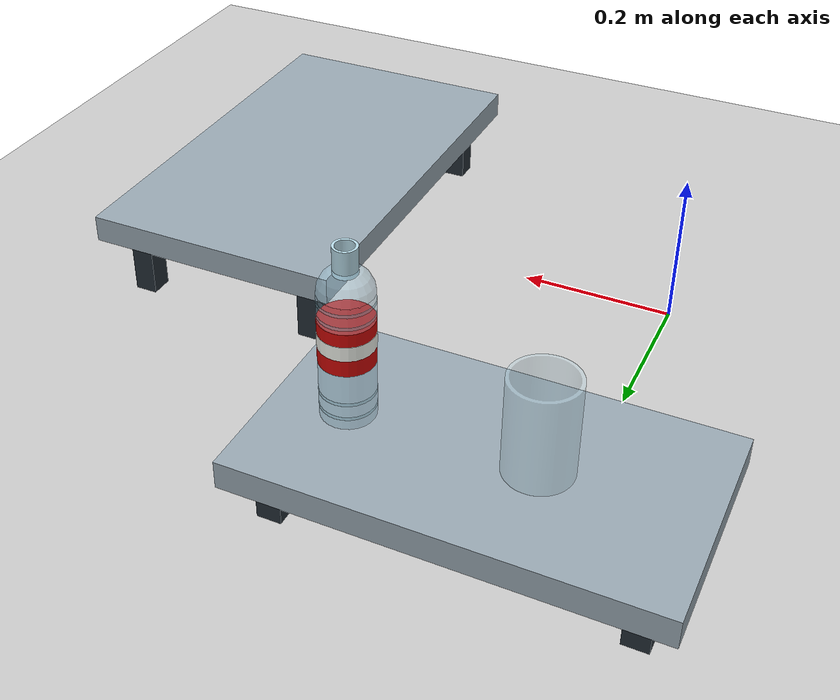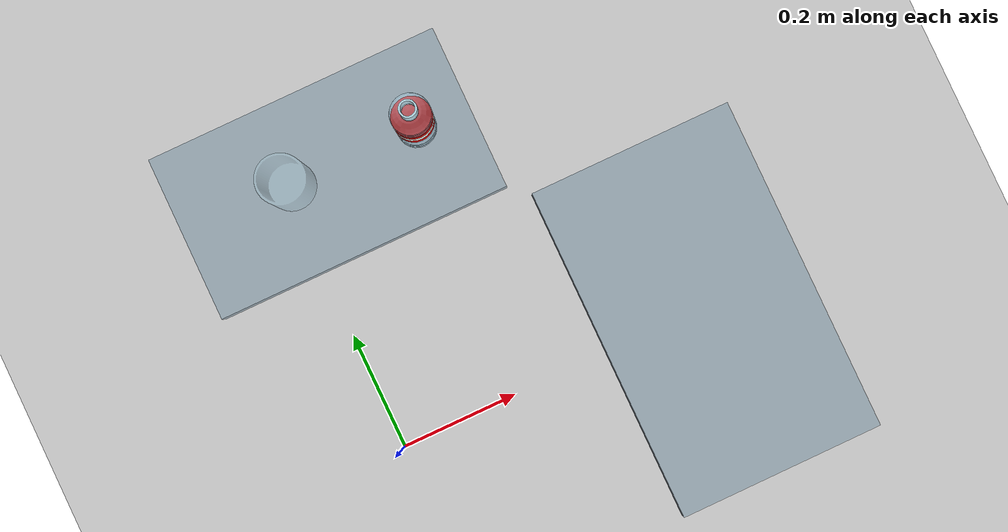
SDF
<?xml version='1.0' encoding='UTF-8'?>
<sdf version="1.6">
  <world name="handarm_pouring">
    <gravity>0 0 -9.81</gravity>
    <physics name="ode" type="ode">
      <max_step_size>0.001</max_step_size>
      <real_time_update_rate>1000</real_time_update_rate>
      <ode>
        <solver>
          <type>quick</type>
          <iters>100</iters>
          <sor>1.3</sor>
        </solver>
        <constraints>
          <cfm>0.0</cfm>
          <erp>0.2</erp>
          <contact_max_correcting_vel>0.1</contact_max_correcting_vel>
          <contact_surface_layer>0.001</contact_surface_layer>
        </constraints>
      </ode>
    </physics>
    <include>
      <uri>model://ground_plane</uri>
      <pose>0 0 0 0 0 0</pose>
    </include>
    <include>
      <uri>model://sun</uri>
    </include>
    <scene>
      <ambient>0.5 0.5 0.5 1</ambient>
      <background>0.7 0.7 0.7 1</background>
    </scene>
    <gui fullscreen="0">
      <camera name="user_camera">
        <pose>1.6 -1.05 1.45 0 0.615737453 2.480549485</pose>
        <view_controller>orbit</view_controller>
        <projection_type>perspective</projection_type>
      </camera>
      <plugin name="handarm_gui_render_rate_limiter" filename="libhandarm_gui_render_rate_limiter_plugin.so">
        <renderRateHz>15.0</renderRateHz>
      </plugin>
    </gui>
    <model name="work_table">
      <static>true</static>
      <pose>0.53 0 0.1025 0 0 0</pose>
      <link name="table_link">
        <collision name="collision_0">
          <pose>0 0 0 0 0 0</pose>
          <geometry>
            <box>
              <size>0.34 0.56 0.035</size>
            </box>
          </geometry>
          <surface>
            <friction>
              <ode>
                <mu>1.0</mu>
                <mu2>1.0</mu2>
              </ode>
            </friction>
          </surface>
        </collision>
        <visual name="surface_0">
          <pose>0 0 0 0 0 0</pose>
          <geometry>
            <box>
              <size>0.34 0.56 0.035</size>
            </box>
          </geometry>
          <material>
            <ambient>0.60 0.66 0.70 1</ambient>
            <diffuse>0.60 0.66 0.70 1</diffuse>
          </material>
        </visual>
        <collision name="collision_1">
          <pose>-0.125 -0.235 -0.06 0 0 0</pose>
          <geometry>
            <box>
              <size>0.03 0.03 0.085</size>
            </box>
          </geometry>
          <surface>
            <friction>
              <ode>
                <mu>1.0</mu>
                <mu2>1.0</mu2>
              </ode>
            </friction>
          </surface>
        </collision>
        <visual name="surface_1">
          <pose>-0.125 -0.235 -0.06 0 0 0</pose>
          <geometry>
            <box>
              <size>0.03 0.03 0.085</size>
            </box>
          </geometry>
          <material>
            <ambient>0.14 0.18 0.21 1</ambient>
            <diffuse>0.14 0.18 0.21 1</diffuse>
          </material>
        </visual>
        <collision name="collision_2">
          <pose>-0.125 0.235 -0.06 0 0 0</pose>
          <geometry>
            <box>
              <size>0.03 0.03 0.085</size>
            </box>
          </geometry>
          <surface>
            <friction>
              <ode>
                <mu>1.0</mu>
                <mu2>1.0</mu2>
              </ode>
            </friction>
          </surface>
        </collision>
        <visual name="surface_2">
          <pose>-0.125 0.235 -0.06 0 0 0</pose>
          <geometry>
            <box>
              <size>0.03 0.03 0.085</size>
            </box>
          </geometry>
          <material>
            <ambient>0.14 0.18 0.21 1</ambient>
            <diffuse>0.14 0.18 0.21 1</diffuse>
          </material>
        </visual>
        <collision name="collision_3">
          <pose>0.125 -0.235 -0.06 0 0 0</pose>
          <geometry>
            <box>
              <size>0.03 0.03 0.085</size>
            </box>
          </geometry>
          <surface>
            <friction>
              <ode>
                <mu>1.0</mu>
                <mu2>1.0</mu2>
              </ode>
            </friction>
          </surface>
        </collision>
        <visual name="surface_3">
          <pose>0.125 -0.235 -0.06 0 0 0</pose>
          <geometry>
            <box>
              <size>0.03 0.03 0.085</size>
            </box>
          </geometry>
          <material>
            <ambient>0.14 0.18 0.21 1</ambient>
            <diffuse>0.14 0.18 0.21 1</diffuse>
          </material>
        </visual>
        <collision name="collision_4">
          <pose>0.125 0.235 -0.06 0 0 0</pose>
          <geometry>
            <box>
              <size>0.03 0.03 0.085</size>
            </box>
          </geometry>
          <surface>
            <friction>
              <ode>
                <mu>1.0</mu>
                <mu2>1.0</mu2>
              </ode>
            </friction>
          </surface>
        </collision>
        <visual name="surface_4">
          <pose>0.125 0.235 -0.06 0 0 0</pose>
          <geometry>
            <box>
              <size>0.03 0.03 0.085</size>
            </box>
          </geometry>
          <material>
            <ambient>0.14 0.18 0.21 1</ambient>
            <diffuse>0.14 0.18 0.21 1</diffuse>
          </material>
        </visual>
      </link>
    </model>
    <model name="right_work_table">
      <static>true</static>
      <pose>0.08 0.45 0.0725 0 0 1.570796327</pose>
      <link name="table_link">
        <collision name="collision_0">
          <pose>0 0 0 0 0 0</pose>
          <geometry>
            <box>
              <size>0.28 0.5 0.035</size>
            </box>
          </geometry>
          <surface>
            <friction>
              <ode>
                <mu>1.0</mu>
                <mu2>1.0</mu2>
              </ode>
            </friction>
          </surface>
        </collision>
        <visual name="surface_0">
          <pose>0 0 0 0 0 0</pose>
          <geometry>
            <box>
              <size>0.28 0.5 0.035</size>
            </box>
          </geometry>
          <material>
            <ambient>0.60 0.66 0.70 1</ambient>
            <diffuse>0.60 0.66 0.70 1</diffuse>
          </material>
        </visual>
        <collision name="collision_1">
          <pose>-0.095 -0.205 -0.045 0 0 0</pose>
          <geometry>
            <box>
              <size>0.03 0.03 0.055</size>
            </box>
          </geometry>
          <surface>
            <friction>
              <ode>
                <mu>1.0</mu>
                <mu2>1.0</mu2>
              </ode>
            </friction>
          </surface>
        </collision>
        <visual name="surface_1">
          <pose>-0.095 -0.205 -0.045 0 0 0</pose>
          <geometry>
            <box>
              <size>0.03 0.03 0.055</size>
            </box>
          </geometry>
          <material>
            <ambient>0.14 0.18 0.21 1</ambient>
            <diffuse>0.14 0.18 0.21 1</diffuse>
          </material>
        </visual>
        <collision name="collision_2">
          <pose>-0.095 0.205 -0.045 0 0 0</pose>
          <geometry>
            <box>
              <size>0.03 0.03 0.055</size>
            </box>
          </geometry>
          <surface>
            <friction>
              <ode>
                <mu>1.0</mu>
                <mu2>1.0</mu2>
              </ode>
            </friction>
          </surface>
        </collision>
        <visual name="surface_2">
          <pose>-0.095 0.205 -0.045 0 0 0</pose>
          <geometry>
            <box>
              <size>0.03 0.03 0.055</size>
            </box>
          </geometry>
          <material>
            <ambient>0.14 0.18 0.21 1</ambient>
            <diffuse>0.14 0.18 0.21 1</diffuse>
          </material>
        </visual>
        <collision name="collision_3">
          <pose>0.095 -0.205 -0.045 0 0 0</pose>
          <geometry>
            <box>
              <size>0.03 0.03 0.055</size>
            </box>
          </geometry>
          <surface>
            <friction>
              <ode>
                <mu>1.0</mu>
                <mu2>1.0</mu2>
              </ode>
            </friction>
          </surface>
        </collision>
        <visual name="surface_3">
          <pose>0.095 -0.205 -0.045 0 0 0</pose>
          <geometry>
            <box>
              <size>0.03 0.03 0.055</size>
            </box>
          </geometry>
          <material>
            <ambient>0.14 0.18 0.21 1</ambient>
            <diffuse>0.14 0.18 0.21 1</diffuse>
          </material>
        </visual>
        <collision name="collision_4">
          <pose>0.095 0.205 -0.045 0 0 0</pose>
          <geometry>
            <box>
              <size>0.03 0.03 0.055</size>
            </box>
          </geometry>
          <surface>
            <friction>
              <ode>
                <mu>1.0</mu>
                <mu2>1.0</mu2>
              </ode>
            </friction>
          </surface>
        </collision>
        <visual name="surface_4">
          <pose>0.095 0.205 -0.045 0 0 0</pose>
          <geometry>
            <box>
              <size>0.03 0.03 0.055</size>
            </box>
          </geometry>
          <material>
            <ambient>0.14 0.18 0.21 1</ambient>
            <diffuse>0.14 0.18 0.21 1</diffuse>
          </material>
        </visual>
      </link>
    </model>
    <model name="ground_object_left">
      <static>false</static>
      <pose>0.24 0.455 0.2045 0.0 0.0 0.0</pose>
      <link name="object_link">
        <inertial>
          <pose>0 0 -0.07988115909200791 0 0 0</pose>
          <mass>0.11399999999999999</mass>
          <inertia>
            <ixx>0.00028070284729957666</ixx>
            <iyy>0.00028070284729957666</iyy>
            <izz>6.277999999999999e-05</izz>
          </inertia>
        </inertial>
        <collision name="collision">
          <pose>0 0 -0.0345 0 0 0</pose>
          <geometry>
            <cylinder>
              <length>0.158</length>
              <radius>0.032</radius>
            </cylinder>
          </geometry>
          <surface>
            <friction>
              <ode>
                <mu>1.2</mu>
                <mu2>1.2</mu2>
              </ode>
            </friction>
            <contact>
              <ode>
                <kp>1000000</kp>
                <kd>10</kd>
                <max_vel>0.1</max_vel>
                <min_depth>0.001</min_depth>
              </ode>
            </contact>
          </surface>
        </collision>
        <collision name="collision_1">
          <pose>0 0 0.0445 0 0 0</pose>
          <geometry>
            <sphere>
              <radius>0.032</radius>
            </sphere>
          </geometry>
          <surface>
            <friction>
              <ode>
                <mu>1.2</mu>
                <mu2>1.2</mu2>
              </ode>
            </friction>
            <contact>
              <ode>
                <kp>1000000</kp>
                <kd>10</kd>
                <max_vel>0.1</max_vel>
                <min_depth>0.001</min_depth>
              </ode>
            </contact>
          </surface>
        </collision>
        <visual name="clear_body">
          <pose>0 0 -0.0345 0 0 0</pose>
          <geometry>
            <cylinder>
              <length>0.158</length>
              <radius>0.032</radius>
            </cylinder>
          </geometry>
          <material>
            <ambient>0.65 0.82 0.9 0.42</ambient>
            <diffuse>0.65 0.82 0.9 0.42</diffuse>
          </material>
        </visual>
        <visual name="shoulder">
          <pose>0 0 0.0445 0 0 0</pose>
          <geometry>
            <sphere>
              <radius>0.032</radius>
            </sphere>
          </geometry>
          <material>
            <ambient>0.65 0.82 0.9 0.42</ambient>
            <diffuse>0.65 0.82 0.9 0.42</diffuse>
          </material>
        </visual>
        <visual name="red_label">
          <pose>0 0 -0.015 0 0 0</pose>
          <geometry>
            <cylinder>
              <length>0.054</length>
              <radius>0.0322</radius>
            </cylinder>
          </geometry>
          <material>
            <ambient>0.82 0.035 0.025 1</ambient>
            <diffuse>0.82 0.035 0.025 1</diffuse>
          </material>
        </visual>
        <visual name="white_label_band">
          <pose>0 0 -0.013 0 0 0</pose>
          <geometry>
            <cylinder>
              <length>0.018</length>
              <radius>0.0324</radius>
            </cylinder>
          </geometry>
          <material>
            <ambient>0.96 0.97 0.94 1</ambient>
            <diffuse>0.96 0.97 0.94 1</diffuse>
          </material>
        </visual>
        <visual name="body_rib_0">
          <pose>0 0 -0.099 0 0 0</pose>
          <geometry>
            <cylinder>
              <length>0.004</length>
              <radius>0.0322</radius>
            </cylinder>
          </geometry>
          <material>
            <ambient>0.64 0.83 0.9 0.65</ambient>
            <diffuse>0.64 0.83 0.9 0.65</diffuse>
          </material>
        </visual>
        <visual name="body_rib_1">
          <pose>0 0 -0.08 0 0 0</pose>
          <geometry>
            <cylinder>
              <length>0.004</length>
              <radius>0.0322</radius>
            </cylinder>
          </geometry>
          <material>
            <ambient>0.64 0.83 0.9 0.65</ambient>
            <diffuse>0.64 0.83 0.9 0.65</diffuse>
          </material>
        </visual>
        <visual name="body_rib_2">
          <pose>0 0 0.019 0 0 0</pose>
          <geometry>
            <cylinder>
              <length>0.004</length>
              <radius>0.0322</radius>
            </cylinder>
          </geometry>
          <material>
            <ambient>0.64 0.83 0.9 0.65</ambient>
            <diffuse>0.64 0.83 0.9 0.65</diffuse>
          </material>
        </visual>
        <visual name="body_rib_3">
          <pose>0 0 0.035 0 0 0</pose>
          <geometry>
            <cylinder>
              <length>0.004</length>
              <radius>0.0322</radius>
            </cylinder>
          </geometry>
          <material>
            <ambient>0.64 0.83 0.9 0.65</ambient>
            <diffuse>0.64 0.83 0.9 0.65</diffuse>
          </material>
        </visual>
        <collision name="neck_wall_0">
          <pose>0.0125 0.0 0.084 0 0 0.0</pose>
          <geometry>
            <box>
              <size>0.003000000000000001 0.005569546286630424 0.033</size>
            </box>
          </geometry>
          <surface>
            <friction>
              <ode>
                <mu>1.2</mu>
                <mu2>1.2</mu2>
              </ode>
            </friction>
            <contact>
              <ode>
                <kp>1000000</kp>
                <kd>10</kd>
                <max_vel>0.1</max_vel>
                <min_depth>0.001</min_depth>
              </ode>
            </contact>
          </surface>
        </collision>
        <collision name="neck_wall_1">
          <pose>0.011548494156391085 0.004783542904563623 0.084 0 0 0.39269908169872414</pose>
          <geometry>
            <box>
              <size>0.003000000000000001 0.005569546286630424 0.033</size>
            </box>
          </geometry>
          <surface>
            <friction>
              <ode>
                <mu>1.2</mu>
                <mu2>1.2</mu2>
              </ode>
            </friction>
            <contact>
              <ode>
                <kp>1000000</kp>
                <kd>10</kd>
                <max_vel>0.1</max_vel>
                <min_depth>0.001</min_depth>
              </ode>
            </contact>
          </surface>
        </collision>
        <collision name="neck_wall_2">
          <pose>0.008838834764831846 0.008838834764831844 0.084 0 0 0.7853981633974483</pose>
          <geometry>
            <box>
              <size>0.003000000000000001 0.005569546286630424 0.033</size>
            </box>
          </geometry>
          <surface>
            <friction>
              <ode>
                <mu>1.2</mu>
                <mu2>1.2</mu2>
              </ode>
            </friction>
            <contact>
              <ode>
                <kp>1000000</kp>
                <kd>10</kd>
                <max_vel>0.1</max_vel>
                <min_depth>0.001</min_depth>
              </ode>
            </contact>
          </surface>
        </collision>
        <collision name="neck_wall_3">
          <pose>0.004783542904563624 0.011548494156391085 0.084 0 0 1.1780972450961724</pose>
          <geometry>
            <box>
              <size>0.003000000000000001 0.005569546286630424 0.033</size>
            </box>
          </geometry>
          <surface>
            <friction>
              <ode>
                <mu>1.2</mu>
                <mu2>1.2</mu2>
              </ode>
            </friction>
            <contact>
              <ode>
                <kp>1000000</kp>
                <kd>10</kd>
                <max_vel>0.1</max_vel>
                <min_depth>0.001</min_depth>
              </ode>
            </contact>
          </surface>
        </collision>
        <collision name="neck_wall_4">
          <pose>7.654042494670958e-19 0.0125 0.084 0 0 1.5707963267948966</pose>
          <geometry>
            <box>
              <size>0.003000000000000001 0.005569546286630424 0.033</size>
            </box>
          </geometry>
          <surface>
            <friction>
              <ode>
                <mu>1.2</mu>
                <mu2>1.2</mu2>
              </ode>
            </friction>
            <contact>
              <ode>
                <kp>1000000</kp>
                <kd>10</kd>
                <max_vel>0.1</max_vel>
                <min_depth>0.001</min_depth>
              </ode>
            </contact>
          </surface>
        </collision>
        <collision name="neck_wall_5">
          <pose>-0.004783542904563622 0.011548494156391085 0.084 0 0 1.9634954084936207</pose>
          <geometry>
            <box>
              <size>0.003000000000000001 0.005569546286630424 0.033</size>
            </box>
          </geometry>
          <surface>
            <friction>
              <ode>
                <mu>1.2</mu>
                <mu2>1.2</mu2>
              </ode>
            </friction>
            <contact>
              <ode>
                <kp>1000000</kp>
                <kd>10</kd>
                <max_vel>0.1</max_vel>
                <min_depth>0.001</min_depth>
              </ode>
            </contact>
          </surface>
        </collision>
        <collision name="neck_wall_6">
          <pose>-0.008838834764831844 0.008838834764831846 0.084 0 0 2.356194490192345</pose>
          <geometry>
            <box>
              <size>0.003000000000000001 0.005569546286630424 0.033</size>
            </box>
          </geometry>
          <surface>
            <friction>
              <ode>
                <mu>1.2</mu>
                <mu2>1.2</mu2>
              </ode>
            </friction>
            <contact>
              <ode>
                <kp>1000000</kp>
                <kd>10</kd>
                <max_vel>0.1</max_vel>
                <min_depth>0.001</min_depth>
              </ode>
            </contact>
          </surface>
        </collision>
        <collision name="neck_wall_7">
          <pose>-0.011548494156391085 0.004783542904563624 0.084 0 0 2.748893571891069</pose>
          <geometry>
            <box>
              <size>0.003000000000000001 0.005569546286630424 0.033</size>
            </box>
          </geometry>
          <surface>
            <friction>
              <ode>
                <mu>1.2</mu>
                <mu2>1.2</mu2>
              </ode>
            </friction>
            <contact>
              <ode>
                <kp>1000000</kp>
                <kd>10</kd>
                <max_vel>0.1</max_vel>
                <min_depth>0.001</min_depth>
              </ode>
            </contact>
          </surface>
        </collision>
        <collision name="neck_wall_8">
          <pose>-0.0125 1.5308084989341916e-18 0.084 0 0 3.141592653589793</pose>
          <geometry>
            <box>
              <size>0.003000000000000001 0.005569546286630424 0.033</size>
            </box>
          </geometry>
          <surface>
            <friction>
              <ode>
                <mu>1.2</mu>
                <mu2>1.2</mu2>
              </ode>
            </friction>
            <contact>
              <ode>
                <kp>1000000</kp>
                <kd>10</kd>
                <max_vel>0.1</max_vel>
                <min_depth>0.001</min_depth>
              </ode>
            </contact>
          </surface>
        </collision>
        <collision name="neck_wall_9">
          <pose>-0.011548494156391087 -0.004783542904563621 0.084 0 0 3.5342917352885173</pose>
          <geometry>
            <box>
              <size>0.003000000000000001 0.005569546286630424 0.033</size>
            </box>
          </geometry>
          <surface>
            <friction>
              <ode>
                <mu>1.2</mu>
                <mu2>1.2</mu2>
              </ode>
            </friction>
            <contact>
              <ode>
                <kp>1000000</kp>
                <kd>10</kd>
                <max_vel>0.1</max_vel>
                <min_depth>0.001</min_depth>
              </ode>
            </contact>
          </surface>
        </collision>
        <collision name="neck_wall_10">
          <pose>-0.008838834764831846 -0.008838834764831844 0.084 0 0 3.9269908169872414</pose>
          <geometry>
            <box>
              <size>0.003000000000000001 0.005569546286630424 0.033</size>
            </box>
          </geometry>
          <surface>
            <friction>
              <ode>
                <mu>1.2</mu>
                <mu2>1.2</mu2>
              </ode>
            </friction>
            <contact>
              <ode>
                <kp>1000000</kp>
                <kd>10</kd>
                <max_vel>0.1</max_vel>
                <min_depth>0.001</min_depth>
              </ode>
            </contact>
          </surface>
        </collision>
        <collision name="neck_wall_11">
          <pose>-0.00478354290456363 -0.011548494156391082 0.084 0 0 4.319689898685965</pose>
          <geometry>
            <box>
              <size>0.003000000000000001 0.005569546286630424 0.033</size>
            </box>
          </geometry>
          <surface>
            <friction>
              <ode>
                <mu>1.2</mu>
                <mu2>1.2</mu2>
              </ode>
            </friction>
            <contact>
              <ode>
                <kp>1000000</kp>
                <kd>10</kd>
                <max_vel>0.1</max_vel>
                <min_depth>0.001</min_depth>
              </ode>
            </contact>
          </surface>
        </collision>
        <collision name="neck_wall_12">
          <pose>-2.296212748401287e-18 -0.0125 0.084 0 0 4.71238898038469</pose>
          <geometry>
            <box>
              <size>0.003000000000000001 0.005569546286630424 0.033</size>
            </box>
          </geometry>
          <surface>
            <friction>
              <ode>
                <mu>1.2</mu>
                <mu2>1.2</mu2>
              </ode>
            </friction>
            <contact>
              <ode>
                <kp>1000000</kp>
                <kd>10</kd>
                <max_vel>0.1</max_vel>
                <min_depth>0.001</min_depth>
              </ode>
            </contact>
          </surface>
        </collision>
        <collision name="neck_wall_13">
          <pose>0.004783542904563625 -0.011548494156391084 0.084 0 0 5.105088062083414</pose>
          <geometry>
            <box>
              <size>0.003000000000000001 0.005569546286630424 0.033</size>
            </box>
          </geometry>
          <surface>
            <friction>
              <ode>
                <mu>1.2</mu>
                <mu2>1.2</mu2>
              </ode>
            </friction>
            <contact>
              <ode>
                <kp>1000000</kp>
                <kd>10</kd>
                <max_vel>0.1</max_vel>
                <min_depth>0.001</min_depth>
              </ode>
            </contact>
          </surface>
        </collision>
        <collision name="neck_wall_14">
          <pose>0.008838834764831842 -0.008838834764831846 0.084 0 0 5.497787143782138</pose>
          <geometry>
            <box>
              <size>0.003000000000000001 0.005569546286630424 0.033</size>
            </box>
          </geometry>
          <surface>
            <friction>
              <ode>
                <mu>1.2</mu>
                <mu2>1.2</mu2>
              </ode>
            </friction>
            <contact>
              <ode>
                <kp>1000000</kp>
                <kd>10</kd>
                <max_vel>0.1</max_vel>
                <min_depth>0.001</min_depth>
              </ode>
            </contact>
          </surface>
        </collision>
        <collision name="neck_wall_15">
          <pose>0.011548494156391082 -0.004783542904563631 0.084 0 0 5.890486225480862</pose>
          <geometry>
            <box>
              <size>0.003000000000000001 0.005569546286630424 0.033</size>
            </box>
          </geometry>
          <surface>
            <friction>
              <ode>
                <mu>1.2</mu>
                <mu2>1.2</mu2>
              </ode>
            </friction>
            <contact>
              <ode>
                <kp>1000000</kp>
                <kd>10</kd>
                <max_vel>0.1</max_vel>
                <min_depth>0.001</min_depth>
              </ode>
            </contact>
          </surface>
        </collision>
        <visual name="open_neck">
          <pose>0 0 0.084 0 0 0</pose>
          <geometry>
            <mesh>
              <uri>model://handarm_sim_demo/meshes/pouring_bottle_neck.stl</uri>
            </mesh>
          </geometry>
          <material>
            <ambient>0.72 0.86 0.91 1</ambient>
            <diffuse>0.72 0.86 0.91 1</diffuse>
            <specular>0.4 0.4 0.4 1</specular>
          </material>
        </visual>
      </link>
    </model>
    <model name="target_object">
      <static>false</static>
      <pose>0.02 0.455 0.151 0 0 0</pose>
      <link name="object_link">
        <inertial>
          <pose>0 0 -0.007216589861751146 0 0 0</pose>
          <mass>0.12</mass>
          <inertia>
            <ixx>0.0002509884720423028</ixx>
            <iyy>0.0002509884720423028</iyy>
            <izz>0.0001618152995391705</izz>
          </inertia>
        </inertial>
        <collision name="cup_bottom">
          <pose>0 0 -0.058 0 0 0</pose>
          <geometry>
            <cylinder>
              <radius>0.04</radius>
              <length>0.004</length>
            </cylinder>
          </geometry>
          <surface>
            <friction>
              <ode>
                <mu>1.2</mu>
                <mu2>1.2</mu2>
              </ode>
            </friction>
            <contact>
              <ode>
                <kp>1000000</kp>
                <kd>10</kd>
                <max_vel>0.1</max_vel>
                <min_depth>0.001</min_depth>
              </ode>
            </contact>
          </surface>
        </collision>
        <collision name="cup_wall_0">
          <pose>0.038 0.0 0.002 0 0 0.0</pose>
          <geometry>
            <box>
              <size>0.0040000000000000036 0.00787931226857314 0.11599999999999999</size>
            </box>
          </geometry>
          <surface>
            <friction>
              <ode>
                <mu>1.2</mu>
                <mu2>1.2</mu2>
              </ode>
            </friction>
            <contact>
              <ode>
                <kp>1000000</kp>
                <kd>10</kd>
                <max_vel>0.1</max_vel>
                <min_depth>0.001</min_depth>
              </ode>
            </contact>
          </surface>
        </collision>
        <collision name="cup_wall_1">
          <pose>0.03726984065532275 0.007413432236612874 0.002 0 0 0.19634954084936207</pose>
          <geometry>
            <box>
              <size>0.0040000000000000036 0.00787931226857314 0.11599999999999999</size>
            </box>
          </geometry>
          <surface>
            <friction>
              <ode>
                <mu>1.2</mu>
                <mu2>1.2</mu2>
              </ode>
            </friction>
            <contact>
              <ode>
                <kp>1000000</kp>
                <kd>10</kd>
                <max_vel>0.1</max_vel>
                <min_depth>0.001</min_depth>
              </ode>
            </contact>
          </surface>
        </collision>
        <collision name="cup_wall_2">
          <pose>0.0351074222354289 0.01454197042987341 0.002 0 0 0.39269908169872414</pose>
          <geometry>
            <box>
              <size>0.0040000000000000036 0.00787931226857314 0.11599999999999999</size>
            </box>
          </geometry>
          <surface>
            <friction>
              <ode>
                <mu>1.2</mu>
                <mu2>1.2</mu2>
              </ode>
            </friction>
            <contact>
              <ode>
                <kp>1000000</kp>
                <kd>10</kd>
                <max_vel>0.1</max_vel>
                <min_depth>0.001</min_depth>
              </ode>
            </contact>
          </surface>
        </collision>
        <collision name="cup_wall_3">
          <pose>0.03159584526749672 0.021111668854744883 0.002 0 0 0.5890486225480862</pose>
          <geometry>
            <box>
              <size>0.0040000000000000036 0.00787931226857314 0.11599999999999999</size>
            </box>
          </geometry>
          <surface>
            <friction>
              <ode>
                <mu>1.2</mu>
                <mu2>1.2</mu2>
              </ode>
            </friction>
            <contact>
              <ode>
                <kp>1000000</kp>
                <kd>10</kd>
                <max_vel>0.1</max_vel>
                <min_depth>0.001</min_depth>
              </ode>
            </contact>
          </surface>
        </collision>
        <collision name="cup_wall_4">
          <pose>0.026870057685088808 0.026870057685088804 0.002 0 0 0.7853981633974483</pose>
          <geometry>
            <box>
              <size>0.0040000000000000036 0.00787931226857314 0.11599999999999999</size>
            </box>
          </geometry>
          <surface>
            <friction>
              <ode>
                <mu>1.2</mu>
                <mu2>1.2</mu2>
              </ode>
            </friction>
            <contact>
              <ode>
                <kp>1000000</kp>
                <kd>10</kd>
                <max_vel>0.1</max_vel>
                <min_depth>0.001</min_depth>
              </ode>
            </contact>
          </surface>
        </collision>
        <collision name="cup_wall_5">
          <pose>0.021111668854744886 0.03159584526749672 0.002 0 0 0.9817477042468103</pose>
          <geometry>
            <box>
              <size>0.0040000000000000036 0.00787931226857314 0.11599999999999999</size>
            </box>
          </geometry>
          <surface>
            <friction>
              <ode>
                <mu>1.2</mu>
                <mu2>1.2</mu2>
              </ode>
            </friction>
            <contact>
              <ode>
                <kp>1000000</kp>
                <kd>10</kd>
                <max_vel>0.1</max_vel>
                <min_depth>0.001</min_depth>
              </ode>
            </contact>
          </surface>
        </collision>
        <collision name="cup_wall_6">
          <pose>0.014541970429873414 0.0351074222354289 0.002 0 0 1.1780972450961724</pose>
          <geometry>
            <box>
              <size>0.0040000000000000036 0.00787931226857314 0.11599999999999999</size>
            </box>
          </geometry>
          <surface>
            <friction>
              <ode>
                <mu>1.2</mu>
                <mu2>1.2</mu2>
              </ode>
            </friction>
            <contact>
              <ode>
                <kp>1000000</kp>
                <kd>10</kd>
                <max_vel>0.1</max_vel>
                <min_depth>0.001</min_depth>
              </ode>
            </contact>
          </surface>
        </collision>
        <collision name="cup_wall_7">
          <pose>0.007413432236612876 0.03726984065532275 0.002 0 0 1.3744467859455345</pose>
          <geometry>
            <box>
              <size>0.0040000000000000036 0.00787931226857314 0.11599999999999999</size>
            </box>
          </geometry>
          <surface>
            <friction>
              <ode>
                <mu>1.2</mu>
                <mu2>1.2</mu2>
              </ode>
            </friction>
            <contact>
              <ode>
                <kp>1000000</kp>
                <kd>10</kd>
                <max_vel>0.1</max_vel>
                <min_depth>0.001</min_depth>
              </ode>
            </contact>
          </surface>
        </collision>
        <collision name="cup_wall_8">
          <pose>2.326828918379971e-18 0.038 0.002 0 0 1.5707963267948966</pose>
          <geometry>
            <box>
              <size>0.0040000000000000036 0.00787931226857314 0.11599999999999999</size>
            </box>
          </geometry>
          <surface>
            <friction>
              <ode>
                <mu>1.2</mu>
                <mu2>1.2</mu2>
              </ode>
            </friction>
            <contact>
              <ode>
                <kp>1000000</kp>
                <kd>10</kd>
                <max_vel>0.1</max_vel>
                <min_depth>0.001</min_depth>
              </ode>
            </contact>
          </surface>
        </collision>
        <collision name="cup_wall_9">
          <pose>-0.007413432236612871 0.03726984065532275 0.002 0 0 1.7671458676442586</pose>
          <geometry>
            <box>
              <size>0.0040000000000000036 0.00787931226857314 0.11599999999999999</size>
            </box>
          </geometry>
          <surface>
            <friction>
              <ode>
                <mu>1.2</mu>
                <mu2>1.2</mu2>
              </ode>
            </friction>
            <contact>
              <ode>
                <kp>1000000</kp>
                <kd>10</kd>
                <max_vel>0.1</max_vel>
                <min_depth>0.001</min_depth>
              </ode>
            </contact>
          </surface>
        </collision>
        <collision name="cup_wall_10">
          <pose>-0.014541970429873409 0.0351074222354289 0.002 0 0 1.9634954084936207</pose>
          <geometry>
            <box>
              <size>0.0040000000000000036 0.00787931226857314 0.11599999999999999</size>
            </box>
          </geometry>
          <surface>
            <friction>
              <ode>
                <mu>1.2</mu>
                <mu2>1.2</mu2>
              </ode>
            </friction>
            <contact>
              <ode>
                <kp>1000000</kp>
                <kd>10</kd>
                <max_vel>0.1</max_vel>
                <min_depth>0.001</min_depth>
              </ode>
            </contact>
          </surface>
        </collision>
        <collision name="cup_wall_11">
          <pose>-0.021111668854744872 0.031595845267496724 0.002 0 0 2.1598449493429825</pose>
          <geometry>
            <box>
              <size>0.0040000000000000036 0.00787931226857314 0.11599999999999999</size>
            </box>
          </geometry>
          <surface>
            <friction>
              <ode>
                <mu>1.2</mu>
                <mu2>1.2</mu2>
              </ode>
            </friction>
            <contact>
              <ode>
                <kp>1000000</kp>
                <kd>10</kd>
                <max_vel>0.1</max_vel>
                <min_depth>0.001</min_depth>
              </ode>
            </contact>
          </surface>
        </collision>
        <collision name="cup_wall_12">
          <pose>-0.026870057685088804 0.026870057685088808 0.002 0 0 2.356194490192345</pose>
          <geometry>
            <box>
              <size>0.0040000000000000036 0.00787931226857314 0.11599999999999999</size>
            </box>
          </geometry>
          <surface>
            <friction>
              <ode>
                <mu>1.2</mu>
                <mu2>1.2</mu2>
              </ode>
            </friction>
            <contact>
              <ode>
                <kp>1000000</kp>
                <kd>10</kd>
                <max_vel>0.1</max_vel>
                <min_depth>0.001</min_depth>
              </ode>
            </contact>
          </surface>
        </collision>
        <collision name="cup_wall_13">
          <pose>-0.031595845267496724 0.021111668854744883 0.002 0 0 2.552544031041707</pose>
          <geometry>
            <box>
              <size>0.0040000000000000036 0.00787931226857314 0.11599999999999999</size>
            </box>
          </geometry>
          <surface>
            <friction>
              <ode>
                <mu>1.2</mu>
                <mu2>1.2</mu2>
              </ode>
            </friction>
            <contact>
              <ode>
                <kp>1000000</kp>
                <kd>10</kd>
                <max_vel>0.1</max_vel>
                <min_depth>0.001</min_depth>
              </ode>
            </contact>
          </surface>
        </collision>
        <collision name="cup_wall_14">
          <pose>-0.0351074222354289 0.014541970429873416 0.002 0 0 2.748893571891069</pose>
          <geometry>
            <box>
              <size>0.0040000000000000036 0.00787931226857314 0.11599999999999999</size>
            </box>
          </geometry>
          <surface>
            <friction>
              <ode>
                <mu>1.2</mu>
                <mu2>1.2</mu2>
              </ode>
            </friction>
            <contact>
              <ode>
                <kp>1000000</kp>
                <kd>10</kd>
                <max_vel>0.1</max_vel>
                <min_depth>0.001</min_depth>
              </ode>
            </contact>
          </surface>
        </collision>
        <collision name="cup_wall_15">
          <pose>-0.03726984065532275 0.007413432236612887 0.002 0 0 2.945243112740431</pose>
          <geometry>
            <box>
              <size>0.0040000000000000036 0.00787931226857314 0.11599999999999999</size>
            </box>
          </geometry>
          <surface>
            <friction>
              <ode>
                <mu>1.2</mu>
                <mu2>1.2</mu2>
              </ode>
            </friction>
            <contact>
              <ode>
                <kp>1000000</kp>
                <kd>10</kd>
                <max_vel>0.1</max_vel>
                <min_depth>0.001</min_depth>
              </ode>
            </contact>
          </surface>
        </collision>
        <collision name="cup_wall_16">
          <pose>-0.038 4.653657836759942e-18 0.002 0 0 3.141592653589793</pose>
          <geometry>
            <box>
              <size>0.0040000000000000036 0.00787931226857314 0.11599999999999999</size>
            </box>
          </geometry>
          <surface>
            <friction>
              <ode>
                <mu>1.2</mu>
                <mu2>1.2</mu2>
              </ode>
            </friction>
            <contact>
              <ode>
                <kp>1000000</kp>
                <kd>10</kd>
                <max_vel>0.1</max_vel>
                <min_depth>0.001</min_depth>
              </ode>
            </contact>
          </surface>
        </collision>
        <collision name="cup_wall_17">
          <pose>-0.03726984065532275 -0.007413432236612877 0.002 0 0 3.3379421944391554</pose>
          <geometry>
            <box>
              <size>0.0040000000000000036 0.00787931226857314 0.11599999999999999</size>
            </box>
          </geometry>
          <surface>
            <friction>
              <ode>
                <mu>1.2</mu>
                <mu2>1.2</mu2>
              </ode>
            </friction>
            <contact>
              <ode>
                <kp>1000000</kp>
                <kd>10</kd>
                <max_vel>0.1</max_vel>
                <min_depth>0.001</min_depth>
              </ode>
            </contact>
          </surface>
        </collision>
        <collision name="cup_wall_18">
          <pose>-0.0351074222354289 -0.014541970429873407 0.002 0 0 3.5342917352885173</pose>
          <geometry>
            <box>
              <size>0.0040000000000000036 0.00787931226857314 0.11599999999999999</size>
            </box>
          </geometry>
          <surface>
            <friction>
              <ode>
                <mu>1.2</mu>
                <mu2>1.2</mu2>
              </ode>
            </friction>
            <contact>
              <ode>
                <kp>1000000</kp>
                <kd>10</kd>
                <max_vel>0.1</max_vel>
                <min_depth>0.001</min_depth>
              </ode>
            </contact>
          </surface>
        </collision>
        <collision name="cup_wall_19">
          <pose>-0.031595845267496724 -0.021111668854744872 0.002 0 0 3.730641276137879</pose>
          <geometry>
            <box>
              <size>0.0040000000000000036 0.00787931226857314 0.11599999999999999</size>
            </box>
          </geometry>
          <surface>
            <friction>
              <ode>
                <mu>1.2</mu>
                <mu2>1.2</mu2>
              </ode>
            </friction>
            <contact>
              <ode>
                <kp>1000000</kp>
                <kd>10</kd>
                <max_vel>0.1</max_vel>
                <min_depth>0.001</min_depth>
              </ode>
            </contact>
          </surface>
        </collision>
        <collision name="cup_wall_20">
          <pose>-0.02687005768508881 -0.026870057685088804 0.002 0 0 3.9269908169872414</pose>
          <geometry>
            <box>
              <size>0.0040000000000000036 0.00787931226857314 0.11599999999999999</size>
            </box>
          </geometry>
          <surface>
            <friction>
              <ode>
                <mu>1.2</mu>
                <mu2>1.2</mu2>
              </ode>
            </friction>
            <contact>
              <ode>
                <kp>1000000</kp>
                <kd>10</kd>
                <max_vel>0.1</max_vel>
                <min_depth>0.001</min_depth>
              </ode>
            </contact>
          </surface>
        </collision>
        <collision name="cup_wall_21">
          <pose>-0.021111668854744883 -0.03159584526749672 0.002 0 0 4.123340357836604</pose>
          <geometry>
            <box>
              <size>0.0040000000000000036 0.00787931226857314 0.11599999999999999</size>
            </box>
          </geometry>
          <surface>
            <friction>
              <ode>
                <mu>1.2</mu>
                <mu2>1.2</mu2>
              </ode>
            </friction>
            <contact>
              <ode>
                <kp>1000000</kp>
                <kd>10</kd>
                <max_vel>0.1</max_vel>
                <min_depth>0.001</min_depth>
              </ode>
            </contact>
          </surface>
        </collision>
        <collision name="cup_wall_22">
          <pose>-0.014541970429873433 -0.035107422235428884 0.002 0 0 4.319689898685965</pose>
          <geometry>
            <box>
              <size>0.0040000000000000036 0.00787931226857314 0.11599999999999999</size>
            </box>
          </geometry>
          <surface>
            <friction>
              <ode>
                <mu>1.2</mu>
                <mu2>1.2</mu2>
              </ode>
            </friction>
            <contact>
              <ode>
                <kp>1000000</kp>
                <kd>10</kd>
                <max_vel>0.1</max_vel>
                <min_depth>0.001</min_depth>
              </ode>
            </contact>
          </surface>
        </collision>
        <collision name="cup_wall_23">
          <pose>-0.007413432236612889 -0.03726984065532275 0.002 0 0 4.516039439535327</pose>
          <geometry>
            <box>
              <size>0.0040000000000000036 0.00787931226857314 0.11599999999999999</size>
            </box>
          </geometry>
          <surface>
            <friction>
              <ode>
                <mu>1.2</mu>
                <mu2>1.2</mu2>
              </ode>
            </friction>
            <contact>
              <ode>
                <kp>1000000</kp>
                <kd>10</kd>
                <max_vel>0.1</max_vel>
                <min_depth>0.001</min_depth>
              </ode>
            </contact>
          </surface>
        </collision>
        <collision name="cup_wall_24">
          <pose>-6.980486755139913e-18 -0.038 0.002 0 0 4.71238898038469</pose>
          <geometry>
            <box>
              <size>0.0040000000000000036 0.00787931226857314 0.11599999999999999</size>
            </box>
          </geometry>
          <surface>
            <friction>
              <ode>
                <mu>1.2</mu>
                <mu2>1.2</mu2>
              </ode>
            </friction>
            <contact>
              <ode>
                <kp>1000000</kp>
                <kd>10</kd>
                <max_vel>0.1</max_vel>
                <min_depth>0.001</min_depth>
              </ode>
            </contact>
          </surface>
        </collision>
        <collision name="cup_wall_25">
          <pose>0.007413432236612875 -0.03726984065532275 0.002 0 0 4.908738521234052</pose>
          <geometry>
            <box>
              <size>0.0040000000000000036 0.00787931226857314 0.11599999999999999</size>
            </box>
          </geometry>
          <surface>
            <friction>
              <ode>
                <mu>1.2</mu>
                <mu2>1.2</mu2>
              </ode>
            </friction>
            <contact>
              <ode>
                <kp>1000000</kp>
                <kd>10</kd>
                <max_vel>0.1</max_vel>
                <min_depth>0.001</min_depth>
              </ode>
            </contact>
          </surface>
        </collision>
        <collision name="cup_wall_26">
          <pose>0.01454197042987342 -0.03510742223542889 0.002 0 0 5.105088062083414</pose>
          <geometry>
            <box>
              <size>0.0040000000000000036 0.00787931226857314 0.11599999999999999</size>
            </box>
          </geometry>
          <surface>
            <friction>
              <ode>
                <mu>1.2</mu>
                <mu2>1.2</mu2>
              </ode>
            </friction>
            <contact>
              <ode>
                <kp>1000000</kp>
                <kd>10</kd>
                <max_vel>0.1</max_vel>
                <min_depth>0.001</min_depth>
              </ode>
            </contact>
          </surface>
        </collision>
        <collision name="cup_wall_27">
          <pose>0.02111166885474487 -0.031595845267496724 0.002 0 0 5.301437602932776</pose>
          <geometry>
            <box>
              <size>0.0040000000000000036 0.00787931226857314 0.11599999999999999</size>
            </box>
          </geometry>
          <surface>
            <friction>
              <ode>
                <mu>1.2</mu>
                <mu2>1.2</mu2>
              </ode>
            </friction>
            <contact>
              <ode>
                <kp>1000000</kp>
                <kd>10</kd>
                <max_vel>0.1</max_vel>
                <min_depth>0.001</min_depth>
              </ode>
            </contact>
          </surface>
        </collision>
        <collision name="cup_wall_28">
          <pose>0.026870057685088797 -0.02687005768508881 0.002 0 0 5.497787143782138</pose>
          <geometry>
            <box>
              <size>0.0040000000000000036 0.00787931226857314 0.11599999999999999</size>
            </box>
          </geometry>
          <surface>
            <friction>
              <ode>
                <mu>1.2</mu>
                <mu2>1.2</mu2>
              </ode>
            </friction>
            <contact>
              <ode>
                <kp>1000000</kp>
                <kd>10</kd>
                <max_vel>0.1</max_vel>
                <min_depth>0.001</min_depth>
              </ode>
            </contact>
          </surface>
        </collision>
        <collision name="cup_wall_29">
          <pose>0.03159584526749672 -0.021111668854744883 0.002 0 0 5.6941366846315</pose>
          <geometry>
            <box>
              <size>0.0040000000000000036 0.00787931226857314 0.11599999999999999</size>
            </box>
          </geometry>
          <surface>
            <friction>
              <ode>
                <mu>1.2</mu>
                <mu2>1.2</mu2>
              </ode>
            </friction>
            <contact>
              <ode>
                <kp>1000000</kp>
                <kd>10</kd>
                <max_vel>0.1</max_vel>
                <min_depth>0.001</min_depth>
              </ode>
            </contact>
          </surface>
        </collision>
        <collision name="cup_wall_30">
          <pose>0.035107422235428884 -0.014541970429873435 0.002 0 0 5.890486225480862</pose>
          <geometry>
            <box>
              <size>0.0040000000000000036 0.00787931226857314 0.11599999999999999</size>
            </box>
          </geometry>
          <surface>
            <friction>
              <ode>
                <mu>1.2</mu>
                <mu2>1.2</mu2>
              </ode>
            </friction>
            <contact>
              <ode>
                <kp>1000000</kp>
                <kd>10</kd>
                <max_vel>0.1</max_vel>
                <min_depth>0.001</min_depth>
              </ode>
            </contact>
          </surface>
        </collision>
        <collision name="cup_wall_31">
          <pose>0.03726984065532275 -0.007413432236612891 0.002 0 0 6.086835766330224</pose>
          <geometry>
            <box>
              <size>0.0040000000000000036 0.00787931226857314 0.11599999999999999</size>
            </box>
          </geometry>
          <surface>
            <friction>
              <ode>
                <mu>1.2</mu>
                <mu2>1.2</mu2>
              </ode>
            </friction>
            <contact>
              <ode>
                <kp>1000000</kp>
                <kd>10</kd>
                <max_vel>0.1</max_vel>
                <min_depth>0.001</min_depth>
              </ode>
            </contact>
          </surface>
        </collision>
        <visual name="hollow_cup">
          <pose>0 0 0 0 0 0</pose>
          <geometry>
            <mesh>
              <uri>model://handarm_sim_demo/meshes/pouring_cup.stl</uri>
            </mesh>
          </geometry>
          <material>
            <ambient>0.72 0.86 0.91 1</ambient>
            <diffuse>0.72 0.86 0.91 1</diffuse>
            <specular>0.4 0.4 0.4 1</specular>
          </material>
          <transparency>0.65</transparency>
        </visual>
      </link>
    </model>
    <model name="pouring_water">
      <static>true</static>
      <link name="water_link">
        <visual name="stream_0">
          <cast_shadows>false</cast_shadows>
          <transparency>1.0</transparency>
          <geometry>
            <cylinder>
              <radius>0.0025</radius>
              <length>0.001</length>
            </cylinder>
          </geometry>
          <material>
            <ambient>0.06 0.38 0.95 1</ambient>
            <diffuse>0.06 0.38 0.95 1</diffuse>
            <specular>0.65 0.75 1 1</specular>
            <emissive>0.015 0.035 0.08 1</emissive>
          </material>
        </visual>
        <visual name="stream_1">
          <cast_shadows>false</cast_shadows>
          <transparency>1.0</transparency>
          <geometry>
            <cylinder>
              <radius>0.0025</radius>
              <length>0.001</length>
            </cylinder>
          </geometry>
          <material>
            <ambient>0.06 0.38 0.95 1</ambient>
            <diffuse>0.06 0.38 0.95 1</diffuse>
            <specular>0.65 0.75 1 1</specular>
            <emissive>0.015 0.035 0.08 1</emissive>
          </material>
        </visual>
        <visual name="stream_2">
          <cast_shadows>false</cast_shadows>
          <transparency>1.0</transparency>
          <geometry>
            <cylinder>
              <radius>0.0025</radius>
              <length>0.001</length>
            </cylinder>
          </geometry>
          <material>
            <ambient>0.06 0.38 0.95 1</ambient>
            <diffuse>0.06 0.38 0.95 1</diffuse>
            <specular>0.65 0.75 1 1</specular>
            <emissive>0.015 0.035 0.08 1</emissive>
          </material>
        </visual>
        <visual name="stream_3">
          <cast_shadows>false</cast_shadows>
          <transparency>1.0</transparency>
          <geometry>
            <cylinder>
              <radius>0.0025</radius>
              <length>0.001</length>
            </cylinder>
          </geometry>
          <material>
            <ambient>0.06 0.38 0.95 1</ambient>
            <diffuse>0.06 0.38 0.95 1</diffuse>
            <specular>0.65 0.75 1 1</specular>
            <emissive>0.015 0.035 0.08 1</emissive>
          </material>
        </visual>
        <visual name="stream_4">
          <cast_shadows>false</cast_shadows>
          <transparency>1.0</transparency>
          <geometry>
            <cylinder>
              <radius>0.0025</radius>
              <length>0.001</length>
            </cylinder>
          </geometry>
          <material>
            <ambient>0.06 0.38 0.95 1</ambient>
            <diffuse>0.06 0.38 0.95 1</diffuse>
            <specular>0.65 0.75 1 1</specular>
            <emissive>0.015 0.035 0.08 1</emissive>
          </material>
        </visual>
        <visual name="stream_5">
          <cast_shadows>false</cast_shadows>
          <transparency>1.0</transparency>
          <geometry>
            <cylinder>
              <radius>0.0025</radius>
              <length>0.001</length>
            </cylinder>
          </geometry>
          <material>
            <ambient>0.06 0.38 0.95 1</ambient>
            <diffuse>0.06 0.38 0.95 1</diffuse>
            <specular>0.65 0.75 1 1</specular>
            <emissive>0.015 0.035 0.08 1</emissive>
          </material>
        </visual>
        <visual name="stream_6">
          <cast_shadows>false</cast_shadows>
          <transparency>1.0</transparency>
          <geometry>
            <cylinder>
              <radius>0.0025</radius>
              <length>0.001</length>
            </cylinder>
          </geometry>
          <material>
            <ambient>0.06 0.38 0.95 1</ambient>
            <diffuse>0.06 0.38 0.95 1</diffuse>
            <specular>0.65 0.75 1 1</specular>
            <emissive>0.015 0.035 0.08 1</emissive>
          </material>
        </visual>
        <visual name="stream_7">
          <cast_shadows>false</cast_shadows>
          <transparency>1.0</transparency>
          <geometry>
            <cylinder>
              <radius>0.0025</radius>
              <length>0.001</length>
            </cylinder>
          </geometry>
          <material>
            <ambient>0.06 0.38 0.95 1</ambient>
            <diffuse>0.06 0.38 0.95 1</diffuse>
            <specular>0.65 0.75 1 1</specular>
            <emissive>0.015 0.035 0.08 1</emissive>
          </material>
        </visual>
        <visual name="stream_8">
          <cast_shadows>false</cast_shadows>
          <transparency>1.0</transparency>
          <geometry>
            <cylinder>
              <radius>0.0025</radius>
              <length>0.001</length>
            </cylinder>
          </geometry>
          <material>
            <ambient>0.06 0.38 0.95 1</ambient>
            <diffuse>0.06 0.38 0.95 1</diffuse>
            <specular>0.65 0.75 1 1</specular>
            <emissive>0.015 0.035 0.08 1</emissive>
          </material>
        </visual>
        <visual name="stream_9">
          <cast_shadows>false</cast_shadows>
          <transparency>1.0</transparency>
          <geometry>
            <cylinder>
              <radius>0.0025</radius>
              <length>0.001</length>
            </cylinder>
          </geometry>
          <material>
            <ambient>0.06 0.38 0.95 1</ambient>
            <diffuse>0.06 0.38 0.95 1</diffuse>
            <specular>0.65 0.75 1 1</specular>
            <emissive>0.015 0.035 0.08 1</emissive>
          </material>
        </visual>
        <visual name="stream_10">
          <cast_shadows>false</cast_shadows>
          <transparency>1.0</transparency>
          <geometry>
            <cylinder>
              <radius>0.0025</radius>
              <length>0.001</length>
            </cylinder>
          </geometry>
          <material>
            <ambient>0.06 0.38 0.95 1</ambient>
            <diffuse>0.06 0.38 0.95 1</diffuse>
            <specular>0.65 0.75 1 1</specular>
            <emissive>0.015 0.035 0.08 1</emissive>
          </material>
        </visual>
        <visual name="stream_11">
          <cast_shadows>false</cast_shadows>
          <transparency>1.0</transparency>
          <geometry>
            <cylinder>
              <radius>0.0025</radius>
              <length>0.001</length>
            </cylinder>
          </geometry>
          <material>
            <ambient>0.06 0.38 0.95 1</ambient>
            <diffuse>0.06 0.38 0.95 1</diffuse>
            <specular>0.65 0.75 1 1</specular>
            <emissive>0.015 0.035 0.08 1</emissive>
          </material>
        </visual>
        <visual name="cup_fill">
          <cast_shadows>false</cast_shadows>
          <transparency>1.0</transparency>
          <geometry>
            <cylinder>
              <radius>0.0025</radius>
              <length>0.001</length>
            </cylinder>
          </geometry>
          <material>
            <ambient>0.06 0.38 0.95 1</ambient>
            <diffuse>0.06 0.38 0.95 1</diffuse>
            <specular>0.65 0.75 1 1</specular>
            <emissive>0.015 0.035 0.08 1</emissive>
          </material>
        </visual>
        <visual name="bottle_fill">
          <cast_shadows>false</cast_shadows>
          <transparency>1.0</transparency>
          <geometry>
            <cylinder>
              <radius>0.0025</radius>
              <length>0.001</length>
            </cylinder>
          </geometry>
          <material>
            <ambient>0.06 0.38 0.95 1</ambient>
            <diffuse>0.06 0.38 0.95 1</diffuse>
            <specular>0.65 0.75 1 1</specular>
            <emissive>0.015 0.035 0.08 1</emissive>
          </material>
        </visual>
      </link>
    </model>
    <plugin name="pouring_visualization" filename="libhandarm_pouring_visualization_plugin.so">
      <initialWaterMl>94</initialWaterMl>
    </plugin>
  </world>
</sdf>
